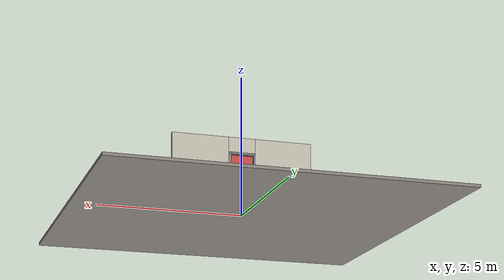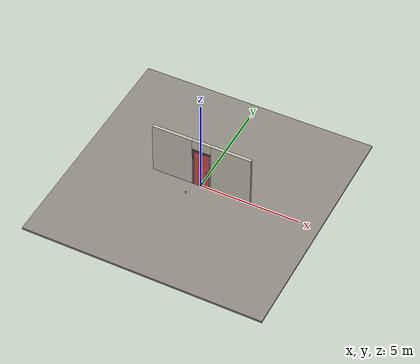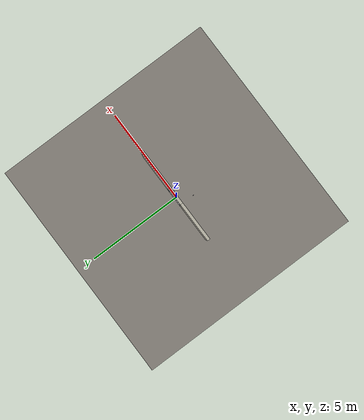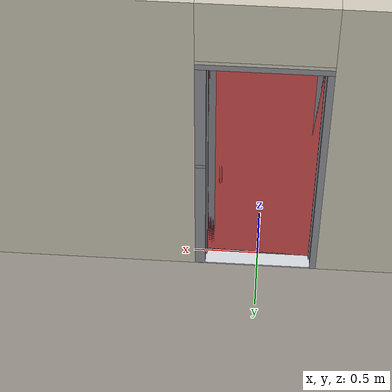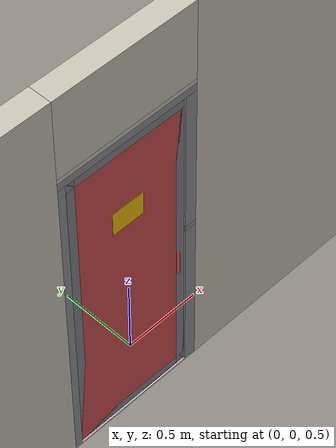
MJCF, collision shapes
<?xml version="1.0" ?>
<mujoco model="db0456_swing_single_full">
  <compiler angle="radian" meshdir="../../hardware" texturedir="../../textures" autolimits="true" inertiafromgeom="false"/>
  <option timestep="0.002" integrator="implicitfast" cone="elliptic" impratio="10" noslip_iterations="3">
    <flag multiccd="enable"/>
  </option>
  <size memory="16M"/>
  <default>
    <geom condim="4" solref="0.005 1" solimp="0.95 0.99 0.001"/>
    <joint solreflimit="0.005 1" solimplimit="0.95 0.99 0.001"/>
    <tendon solreflimit="0.005 1"/>
    <equality solref="0.002 1"/>
  </default>
  <visual>
    <headlight ambient="0.4 0.4 0.4" diffuse="0.7 0.7 0.7" specular="0.2 0.2 0.2"/>
    <quality shadowsize="4096"/>
    <map znear="0.01" zfar="60"/>
  </visual>
  <asset>
    <mesh name="cyl_face_e9e5036966" file="cyl_face_e9e5036966.obj"/>
    <mesh name="hinge_a862eb1c73" file="hinge_a862eb1c73.obj"/>
    <mesh name="hinge_jamb_6edc213065" file="hinge_jamb_6edc213065.obj"/>
    <mesh name="pull_1e5d69a91a" file="pull_1e5d69a91a.obj"/>
    <material name="mat_floor" rgba="0.55 0.53 0.5 1" specular="0.2" shininess="0.15" reflectance="0"/>
    <material name="mat_wall" rgba="0.78 0.76 0.7 1" specular="0.2" shininess="0.1" reflectance="0"/>
    <material name="mat_leaf" rgba="0.5 0.51 0.53 1" specular="0.23" shininess="0.54" reflectance="0.02"/>
    <material name="mat_hinge" rgba="0.65 0.66 0.68 1" specular="0.74" shininess="0.5" reflectance="0.36"/>
    <material name="mat_op_stainless" rgba="0.75 0.76 0.77 1" specular="0.8" shininess="0.65" reflectance="0.4"/>
    <material name="mat_deadbolt" rgba="0.85 0.66 0.3 1" specular="0.8" shininess="0.75" reflectance="0.4"/>
    <material name="mat_frame" rgba="0.55 0.56 0.58 1" specular="0.8" shininess="0.55" reflectance="0.4"/>
    <material name="mat_threshold" rgba="0.8 0.81 0.83 1" specular="0.8" shininess="0.6" reflectance="0.4"/>
    <material name="mat_placard" rgba="0.95 0.75 0.05 1" specular="0.2" shininess="0.5" reflectance="0"/>
    <material name="mat_bumper_stop" rgba="0.08 0.08 0.08 1" specular="0.2" shininess="0.1" reflectance="0"/>
    <material name="mat_stop_base" rgba="0.9 0.9 0.92 1" specular="0.8" shininess="0.9" reflectance="0.4"/>
    <texture name="skybox" type="skybox" builtin="gradient" rgb1="0.6 0.7 0.85" rgb2="0.9 0.92 0.95" width="256" height="256"/>
  </asset>
  <worldbody>
    <light name="sun" pos="1.5 -2.5 4" dir="-0.3 0.5 -0.8" directional="true" diffuse="0.8 0.8 0.8" specular="0.3 0.3 0.3" castshadow="true"/>
    <light name="fill" pos="-1.5 2.5 3" dir="0.3 -0.5 -0.7" directional="true" diffuse="0.35 0.35 0.4" castshadow="false"/>
    <camera name="robot_view" pos="0 -2.584812 1.812087" xyaxes="1 0 0 0 0.26963 0.962964" fovy="52"/>
    <camera name="far_view" pos="0 2.690812 1.812087" xyaxes="-1 0 0 0 -0.26963 0.962964" fovy="52"/>
    <camera name="iso" pos="2.004737 -2.162762 2.234138" xyaxes="0.741536 0.670913 0 -0.242917 0.268487 0.932151" fovy="46"/>
    <camera name="detail_handle" pos="0.481 -0.8725 1.296" xyaxes="0.97561 0.219512 0 -0.070934 0.315262 0.94635" fovy="38"/>
    <geom name="floor" type="box" size="6 6 0.05" pos="0 0 -0.05" material="mat_floor" group="0" contype="1" conaffinity="1" friction="0.8 0.005 0.0001" density="2400"/>
    <geom name="wall_left" type="box" size="1.02 0.0725 1.3735" pos="-1.48 0.053 1.3735" material="mat_wall" group="0" contype="1" conaffinity="1" friction="0.6 0.005 0.0001" density="800"/>
    <geom name="wall_right" type="box" size="1.005 0.0725 1.3735" pos="1.495 0.053 1.3735" material="mat_wall" group="0" contype="1" conaffinity="1" friction="0.6 0.005 0.0001" density="800"/>
    <geom name="wall_header" type="box" size="0.475 0.0725 0.26" pos="0.015 0.053 2.487" material="mat_wall" group="0" contype="1" conaffinity="1" friction="0.6 0.005 0.0001" density="800"/>
    <geom name="hinge_0_jamb" type="mesh" mesh="hinge_jamb_6edc213065" pos="-0.407 -0.0195 0.267" material="mat_hinge" group="1" contype="0" conaffinity="0" density="7850"/>
    <geom name="hinge_1_jamb" type="mesh" mesh="hinge_jamb_6edc213065" pos="-0.407 -0.0195 1.08" material="mat_hinge" group="1" contype="0" conaffinity="0" density="7850"/>
    <geom name="hinge_2_jamb" type="mesh" mesh="hinge_jamb_6edc213065" pos="-0.407 -0.0195 1.963" material="mat_hinge" group="1" contype="0" conaffinity="0" density="7850"/>
    <geom name="leaf_deadbolt_strike_b" type="box" size="0.0155 0.003 0.0005" pos="0.4095 0 1.1375" quat="-0.5 -0.5 0.5 0.5" material="mat_deadbolt" group="1" contype="0" conaffinity="0" density="7800"/>
    <geom name="leaf_deadbolt_strike_l" type="box" size="0.003 0.0155 0.0005" pos="0.4095 0.0125 1.156" quat="-0.5 -0.5 0.5 0.5" material="mat_deadbolt" group="1" contype="0" conaffinity="0" density="7800"/>
    <geom name="leaf_deadbolt_strike_t" type="box" size="0.0155 0.003 0.0005" pos="0.4095 0 1.1745" quat="-0.5 -0.5 0.5 0.5" material="mat_deadbolt" group="1" contype="0" conaffinity="0" density="7800"/>
    <geom name="leaf_deadbolt_strike_r" type="box" size="0.003 0.0155 0.0005" pos="0.4095 -0.0125 1.156" quat="-0.5 -0.5 0.5 0.5" material="mat_deadbolt" group="1" contype="0" conaffinity="0" density="7800"/>
    <geom name="jamb_hinge" type="box" size="0.025 0.0725 1.0735" pos="-0.435 0.053 1.0735" material="mat_frame" group="0" contype="1" conaffinity="1" friction="0.6 0.005 0.0001" density="300"/>
    <geom name="strike_1156_wall_n" type="box" size="0.04 0.058 0.0155" pos="0.45 0.0675 1.156" material="mat_frame" group="0" contype="1" conaffinity="1" friction="0.6 0.005 0.0001" density="300"/>
    <geom name="strike_1156_wall_p" type="box" size="0.04 0.005 0.0155" pos="0.45 -0.0145 1.156" material="mat_frame" group="0" contype="1" conaffinity="1" friction="0.6 0.005 0.0001" density="300"/>
    <geom name="strike_1156_back" type="box" size="0.0253 0.0095 0.0155" pos="0.4647 0 1.156" material="mat_frame" group="0" contype="1" conaffinity="1" friction="0.6 0.005 0.0001" density="300"/>
    <geom name="jamb_strike_0" type="box" size="0.04 0.0725 0.57025" pos="0.45 0.053 0.57025" material="mat_frame" group="0" contype="1" conaffinity="1" friction="0.6 0.005 0.0001" density="300"/>
    <geom name="jamb_strike_1" type="box" size="0.04 0.0725 0.48775" pos="0.45 0.053 1.65925" material="mat_frame" group="0" contype="1" conaffinity="1" friction="0.6 0.005 0.0001" density="300"/>
    <geom name="jamb_head" type="box" size="0.475 0.0725 0.025" pos="0.015 0.053 2.172" material="mat_frame" group="0" contype="1" conaffinity="1" friction="0.6 0.005 0.0001" density="300"/>
    <geom name="head_stud" type="box" size="0.475 0.0725 0.015" pos="0.015 0.053 2.212" material="mat_wall" group="0" contype="1" conaffinity="1" friction="0.6 0.005 0.0001" density="500"/>
    <geom name="stop_hinge" type="box" size="0.0055 0.016 1.0735" pos="-0.4045 0.029 1.0735" material="mat_frame" group="0" contype="1" conaffinity="1" friction="0.6 0.005 0.0001" density="300"/>
    <geom name="stop_strike" type="box" size="0.0055 0.016 1.0735" pos="0.4045 0.029 1.0735" material="mat_frame" group="0" contype="1" conaffinity="1" friction="0.6 0.005 0.0001" density="300"/>
    <geom name="stop_head" type="box" size="0.41 0.016 0.0055" pos="0 0.029 2.1415" material="mat_frame" group="0" contype="1" conaffinity="1" friction="0.6 0.005 0.0001" density="300"/>
    <geom name="threshold" type="box" size="0.46 0.0725 0.0065" pos="0 0.053 0.0065" material="mat_threshold" group="0" contype="1" conaffinity="1" friction="0.5 0.005 0.0001" density="2700"/>
    <geom name="door_stop_base" type="cylinder" size="0.022 0.003" pos="-0.423 -0.71055 0.003" material="mat_stop_base" group="0" contype="1" conaffinity="1" friction="0.6 0.005 0.0001" density="7850"/>
    <geom name="door_stop_post" type="cylinder" size="0.012 0.0255" pos="-0.423 -0.71055 0.0315" material="mat_stop_base" group="0" contype="1" conaffinity="1" friction="0.6 0.005 0.0001" density="7850"/>
    <geom name="door_stop_bumper" type="cylinder" size="0.022 0.02" pos="-0.423 -0.71055 0.077" material="mat_bumper_stop" group="0" contype="1" conaffinity="1" friction="0.6 0.005 0.0001" density="1100"/>
    <site name="approach_point" pos="0 -1.5 0" quat="1 0 0 0" size="0.05" rgba="0.2 0.9 0.2 0.5" group="4"/>
    <site name="goal_point" pos="0 1.5 0" quat="1 0 0 0" size="0.05" rgba="0.2 0.9 0.2 0.5" group="4"/>
    <site name="door_plane_center" pos="0 0 1.0735" quat="1 0 0 0" size="0.02" rgba="0.2 0.9 0.2 0.5" group="4"/>
    <body name="leaf" pos="-0.41 0 0">
      <inertial pos="0.409337 -0.0002 1.080094" mass="77.058002" quat="0.500036 -0.499516 -0.500468 -0.49998" diaginertia="4.377288435 28.735493765 33.096535059"/>
      <joint name="leaf_hinge" type="hinge" axis="0 0 -1" pos="0.003 -0.0195 0" limited="true" range="0 1.570796" damping="0.218374" frictionloss="0.459119" armature="0.02"/>
      <geom name="leaf_slab_col" type="box" size="0.4065 0.0125 1.063" pos="0.4095 0 1.08" material="mat_leaf" group="3" contype="1" conaffinity="1" rgba="0.8 0.3 0.3 0.25" friction="0.45 0.005 0.0001" density="1"/>
      <geom name="leaf_rail_b" type="box" size="0.4065 0.0125 0.03" pos="0.4095 0 0.047" material="mat_leaf" group="1" contype="0" conaffinity="0" density="1"/>
      <geom name="leaf_rail_t" type="box" size="0.4065 0.0125 0.03" pos="0.4095 0 2.113" material="mat_leaf" group="1" contype="0" conaffinity="0" density="1"/>
      <geom name="leaf_stile_h" type="box" size="0.03 0.0125 1.063" pos="0.033 0 1.08" material="mat_leaf" group="1" contype="0" conaffinity="0" density="1"/>
      <geom name="leaf_stile_l" type="box" size="0.03 0.0125 1.063" pos="0.786 0 1.08" material="mat_leaf" group="1" contype="0" conaffinity="0" density="1"/>
      <geom name="leaf_bar_0" type="cylinder" size="0.0095 1.003" pos="0.1323 0 1.08" material="mat_leaf" group="1" contype="0" conaffinity="0" density="1"/>
      <geom name="leaf_bar_1" type="cylinder" size="0.0095 1.003" pos="0.2709 0 1.08" material="mat_leaf" group="1" contype="0" conaffinity="0" density="1"/>
      <geom name="leaf_bar_2" type="cylinder" size="0.0095 1.003" pos="0.4095 0 1.08" material="mat_leaf" group="1" contype="0" conaffinity="0" density="1"/>
      <geom name="leaf_bar_3" type="cylinder" size="0.0095 1.003" pos="0.5481 0 1.08" material="mat_leaf" group="1" contype="0" conaffinity="0" density="1"/>
      <geom name="leaf_bar_4" type="cylinder" size="0.0095 1.003" pos="0.6867 0 1.08" material="mat_leaf" group="1" contype="0" conaffinity="0" density="1"/>
      <geom name="leaf_crossbar_33" type="box" size="0.3465 0.01 0.02" pos="0.4095 0 0.71858" material="mat_leaf" group="1" contype="0" conaffinity="0" density="1"/>
      <geom name="leaf_crossbar_66" type="box" size="0.3465 0.01 0.02" pos="0.4095 0 1.42016" material="mat_leaf" group="1" contype="0" conaffinity="0" density="1"/>
      <geom name="hinge_0" type="mesh" mesh="hinge_a862eb1c73" pos="0.003 -0.0195 0.267" material="mat_hinge" group="1" contype="0" conaffinity="0" density="7850"/>
      <geom name="hinge_1" type="mesh" mesh="hinge_a862eb1c73" pos="0.003 -0.0195 1.08" material="mat_hinge" group="1" contype="0" conaffinity="0" density="7850"/>
      <geom name="hinge_2" type="mesh" mesh="hinge_a862eb1c73" pos="0.003 -0.0195 1.963" material="mat_hinge" group="1" contype="0" conaffinity="0" density="7850"/>
      <geom name="leaf_pull_n" type="mesh" mesh="pull_1e5d69a91a" pos="0.711 -0.0125 1.016" quat="0.707107 0.707107 0 0" material="mat_op_stainless" group="1" contype="0" conaffinity="0" density="3000"/>
      <geom name="leaf_pull_col_n" type="capsule" size="0.0095 0.08" pos="0.711 -0.0725 1.016" material="mat_op_stainless" group="3" contype="1" conaffinity="1" rgba="0.8 0.3 0.3 0.25" friction="0.7 0.01 0.0001" density="3000"/>
      <geom name="leaf_pull_p" type="mesh" mesh="pull_1e5d69a91a" pos="0.711 0.0125 1.016" quat="-0.707107 0.707107 0 0" material="mat_op_stainless" group="1" contype="0" conaffinity="0" density="3000"/>
      <geom name="leaf_pull_col_p" type="capsule" size="0.0095 0.08" pos="0.711 0.0725 1.016" material="mat_op_stainless" group="3" contype="1" conaffinity="1" rgba="0.8 0.3 0.3 0.25" friction="0.7 0.01 0.0001" density="3000"/>
      <geom name="leaf_deadbolt_faceplate" type="box" size="0.0006 0.0105 0.0245" pos="0.8154 0 1.156" material="mat_deadbolt" group="1" contype="0" conaffinity="0" density="8500"/>
      <geom name="leaf_deadbolt_cylinder_face" type="mesh" mesh="cyl_face_e9e5036966" pos="0.751 -0.0125 1.156" quat="0.707107 0.707107 0 0" material="mat_deadbolt" group="1" contype="0" conaffinity="0" density="7100"/>
      <geom name="warning_placard" type="box" size="0.11 0.001 0.08" pos="0.4095 -0.0135 1.6115" material="mat_placard" group="2" contype="0" conaffinity="0" density="1000"/>
      <site name="leaf_pull_grip_n" pos="0.711 -0.0725 1.016" quat="1 0 0 0" size="0.012" rgba="0.2 0.9 0.2 0.5" group="4"/>
      <site name="leaf_pull_grip_p" pos="0.711 0.0725 1.016" quat="1 0 0 0" size="0.012" rgba="0.2 0.9 0.2 0.5" group="4"/>
      <site name="leaf_edge_mid" pos="0.816 0 1.063" quat="1 0 0 0" size="0.02" rgba="0.2 0.9 0.2 0.5" group="4"/>
      <body name="leaf_deadbolt" pos="0.816 0 1.156">
        <inertial pos="-0.0023 0 0" mass="0.18836" quat="0 0 0.707107 0.707107" diaginertia="0.000013829 0.000052194 0.000057986"/>
        <geom name="leaf_deadbolt_box" type="box" size="0.0277 0.008 0.0125" pos="-0.0023 0 0" material="mat_deadbolt" group="0" contype="1" conaffinity="1" friction="0.3 0.005 0.0001" density="8500"/>
      </body>
    </body>
  </worldbody>
  <sensor>
    <jointpos name="leaf_hinge_pos" joint="leaf_hinge"/>
    <jointvel name="leaf_hinge_vel" joint="leaf_hinge"/>
  </sensor>
</mujoco>
